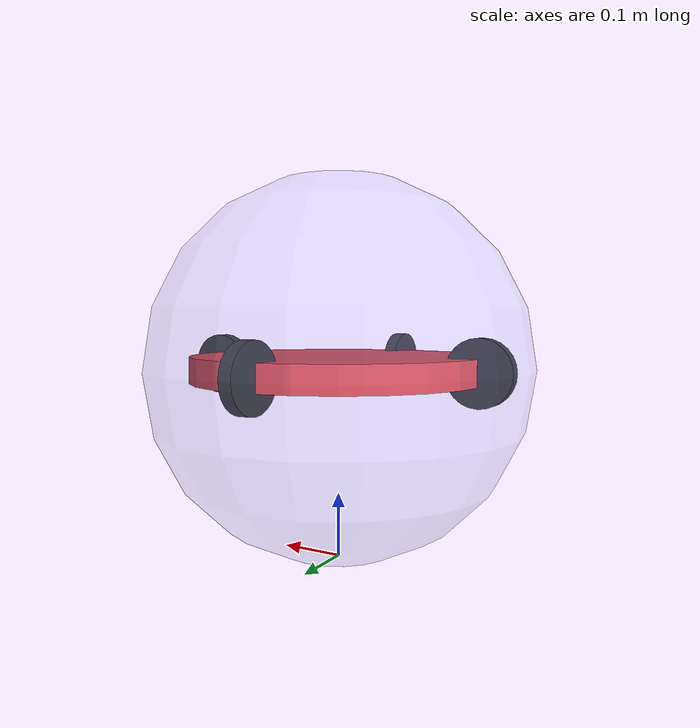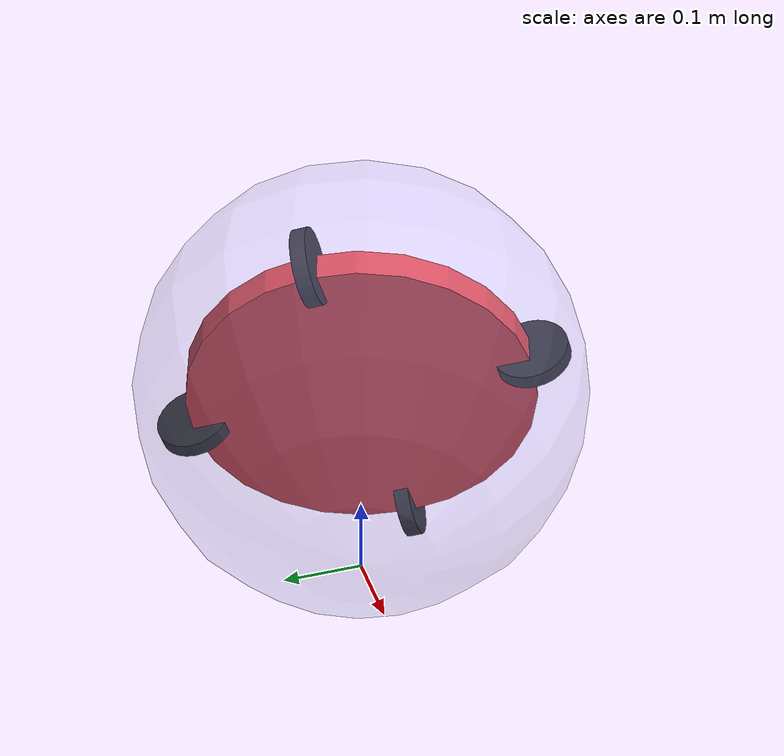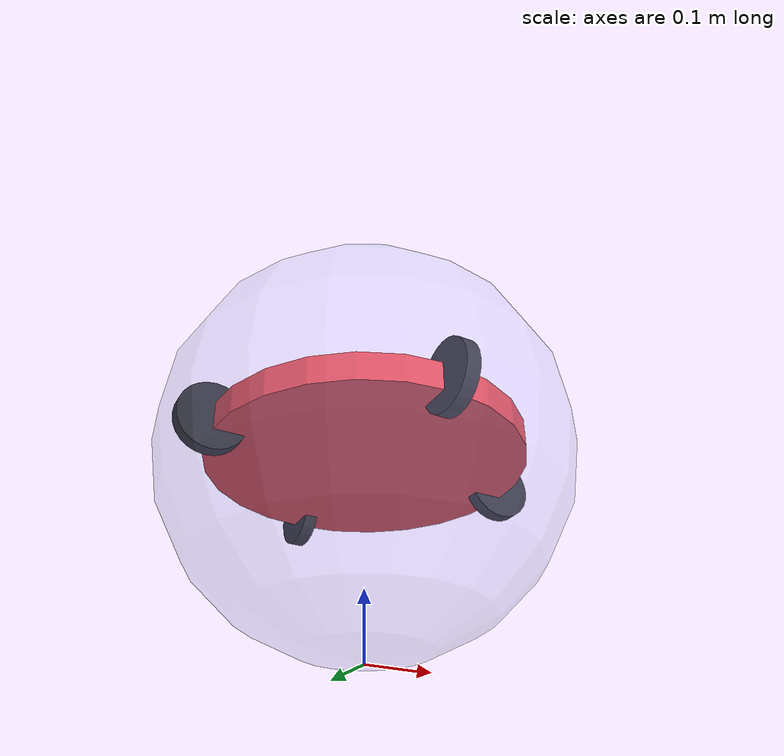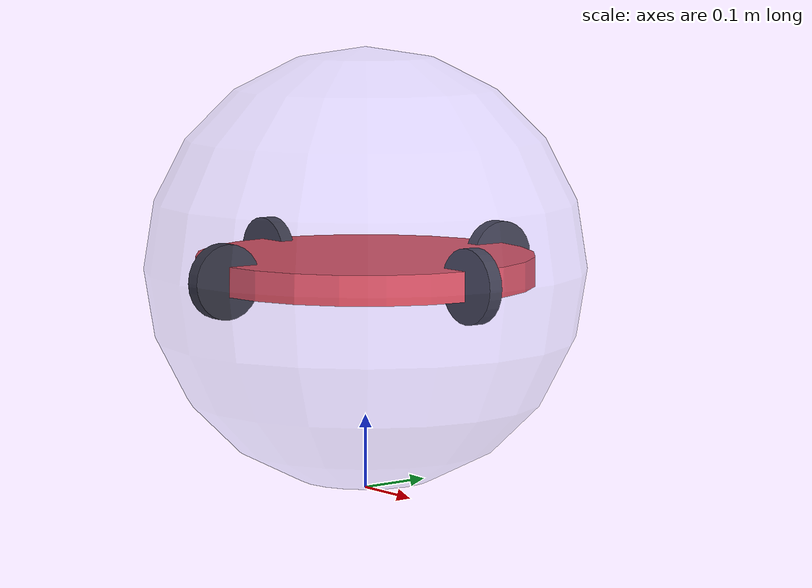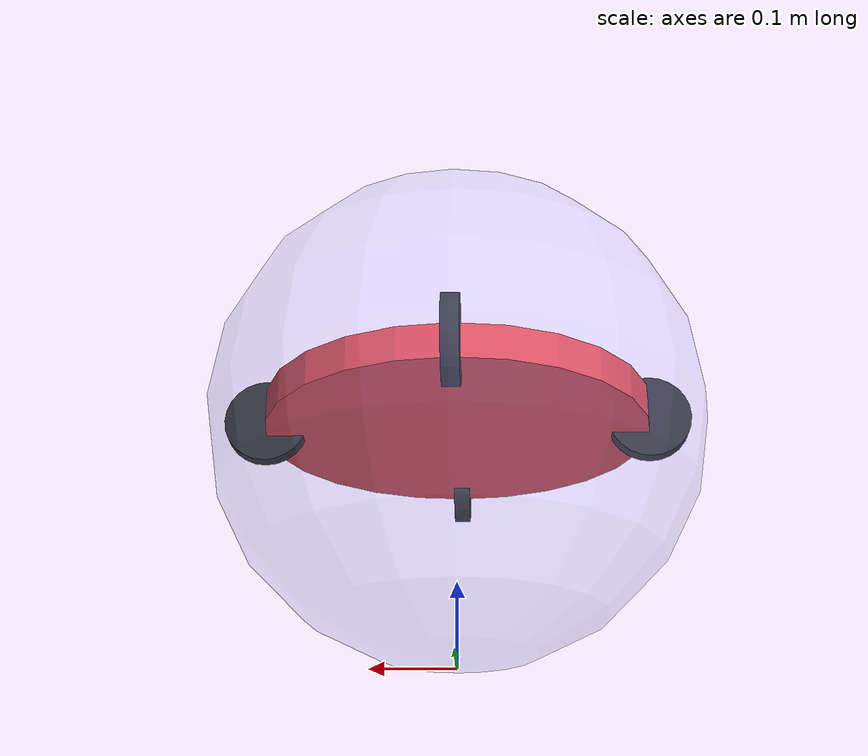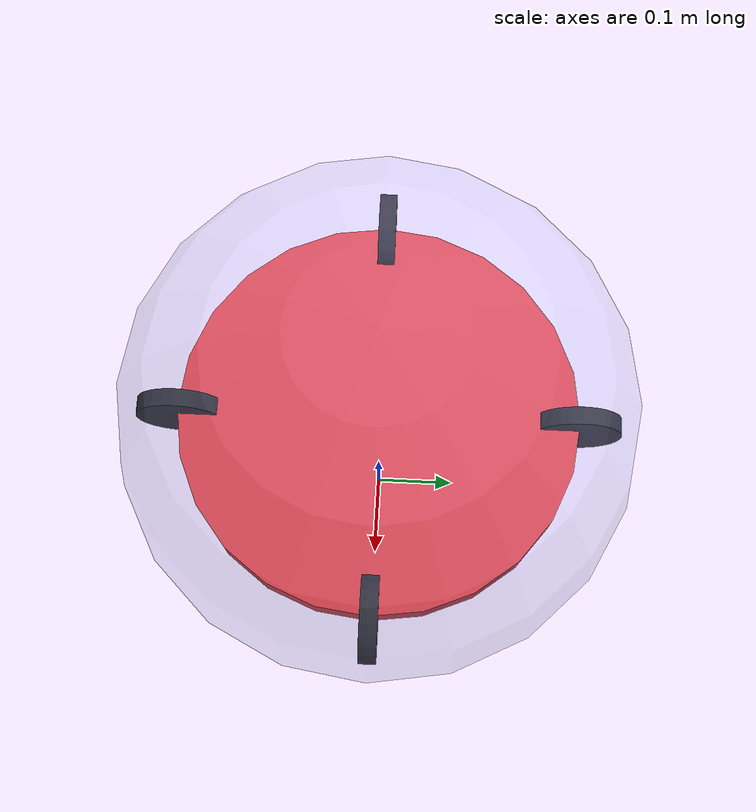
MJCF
<mujoco model="bb8_xray">
  <option timestep="0.002" gravity="0 0 -9.81"/>
  <visual>
    <rgba haze="0.1 0.1 0.1 1"/>
  </visual>

  <worldbody>

    <!-- Outer sphere -->
    <body name="sphere" pos="0 0 0.3">
      <joint type="free"/>

      <!-- Transparent shell -->
      <geom type="sphere"
            size="0.3"
            mass="5"
            rgba="0.7 0.7 1 0.25"
            friction="1 0.005 0.0001"/>

      <!-- Internal cart -->
      <body name="cart" pos="0 0 0">
        <!-- Cartesian motion inside sphere -->
        <joint name="cart_x" type="slide" axis="1 0 0" range="-0.15 0.15"/>
        <joint name="cart_y" type="slide" axis="0 1 0" range="-0.15 0.15"/>

        <!-- Cart chassis -->
        <geom type="cylinder"
              size="0.23 0.02"
              mass="2"
              rgba="0.9 0.2 0.2 1"/>

        <!-- Four internal wheels -->
        <geom type="cylinder"
              pos="0.23 0 0"
              size="0.05 0.01"
              quat="0.5 0.5 -0.5 0.5"
              mass="0.2"
              rgba="0.1 0.1 0.1 1"/>

        <geom type="cylinder"
              pos="-0.23 0 0"
              size="0.05 0.01"
              quat="0.5 0.5 -0.5 0.5"
              mass="0.2"
              rgba="0.1 0.1 0.1 1"/>

        <geom type="cylinder"
              pos="0 0.23 0"
              size="0.05 0.01"
              quat="0.5 0.5 0.5 0.5"
              mass="0.2"
              rgba="0.1 0.1 0.1 1"/>

        <geom type="cylinder"
              pos="0 -0.23 0"
              size="0.05 0.01"
              quat="0.5 0.5 0.5 0.5"
              mass="0.2"
              rgba="0.1 0.1 0.1 1"/>

      </body>
    </body>
  </worldbody>

  <!-- Actuation -->
  <actuator>
  <motor name="cart_x" joint="cart_x"
         ctrlrange="-10 10" ctrllimited="true"/>
  <motor name="cart_y" joint="cart_y"
         ctrlrange="-10 10" ctrllimited="true"/>
  </actuator>
</mujoco>
